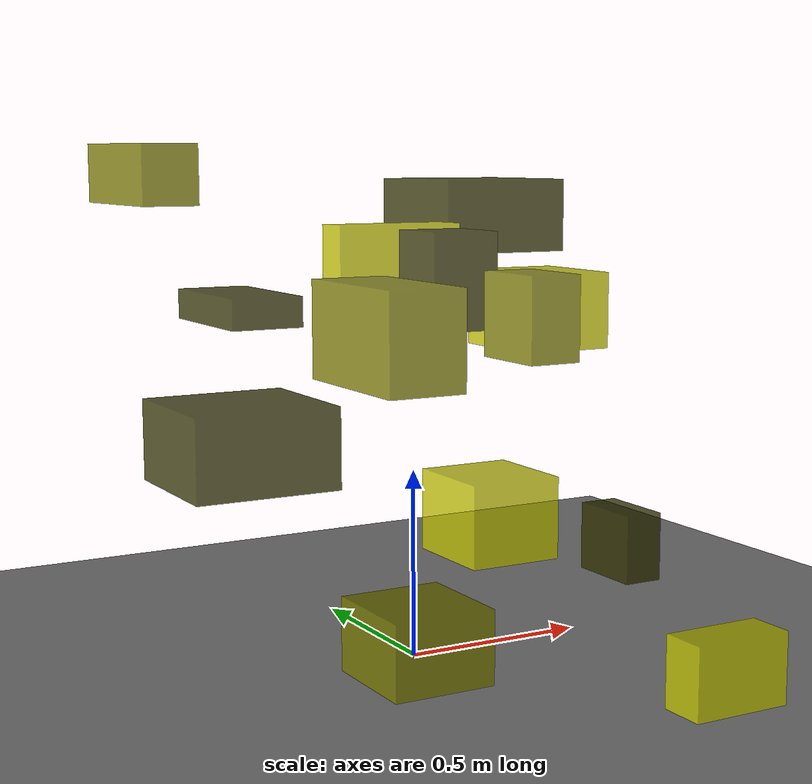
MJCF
<?xml version="1.0"?>
<mujoco model="obstacle_scene">
  <compiler angle="radian" coordinate="local"/>
  <option timestep="0.001" gravity="0 0 -9.81"/>

  <asset>
    <material name="obstacle_mat" rgba="0.8 0.8 0.0 0.8"/>
    <material name="ground_mat" rgba="0.5 0.5 0.5 1"/>
  </asset>

  <worldbody>
    <!-- Ground plane -->
    <geom name="ground" type="plane" size="3 3 0.1" material="ground_mat"/>

    <!-- Obstacles -->
    <body name="obstacle_0" pos="0.503987 0.551207 1.139245">
      <geom name="obs_0" type="box" size="0.195483 0.197513 0.105414" rgba="0.2 0.2 0.0 0.8"/>
    </body>
    <body name="obstacle_1" pos="-0.399500 -0.618353 0.939002">
      <geom name="obs_1" type="box" size="0.089241 0.181045 0.109898" rgba="0.5 0.5 0.0 0.8"/>
    </body>
    <body name="obstacle_2" pos="0.427614 -0.765391 0.108572">
      <geom name="obs_2" type="box" size="0.133034 0.061822 0.091893" rgba="0.8 0.8 0.0 0.8"/>
    </body>
    <body name="obstacle_3" pos="-0.237151 0.587836 0.889863">
      <geom name="obs_3" type="box" size="0.103786 0.202890 0.042881" rgba="0.2 0.2 0.0 0.8"/>
    </body>
    <body name="obstacle_4" pos="-0.777328 -0.180764 1.273989">
      <geom name="obs_4" type="box" size="0.062859 0.181725 0.065958" rgba="0.5 0.5 0.0 0.8"/>
    </body>
    <body name="obstacle_5" pos="0.806032 0.653224 0.833427">
      <geom name="obs_5" type="box" size="0.153946 0.170173 0.119300" rgba="0.8 0.8 0.0 0.8"/>
    </body>
    <body name="obstacle_6" pos="0.899303 0.314759 0.135975">
      <geom name="obs_6" type="box" size="0.060950 0.121121 0.104306" rgba="0.2 0.2 0.0 0.8"/>
    </body>
    <body name="obstacle_7" pos="-0.327881 -0.615968 0.256991">
      <geom name="obs_7" type="box" size="0.121804 0.129145 0.085980" rgba="0.5 0.5 0.0 0.8"/>
    </body>
    <body name="obstacle_8" pos="0.127119 0.353651 1.039477">
      <geom name="obs_8" type="box" size="0.187299 0.055026 0.086115" rgba="0.8 0.8 0.0 0.8"/>
    </body>
    <body name="obstacle_9" pos="-0.405664 0.185925 0.578111">
      <geom name="obs_9" type="box" size="0.195732 0.188963 0.108177" rgba="0.2 0.2 0.0 0.8"/>
    </body>
    <body name="obstacle_10" pos="0.198447 -0.254826 0.917442">
      <geom name="obs_10" type="box" size="0.070238 0.111117 0.109018" rgba="0.5 0.5 0.0 0.8"/>
    </body>
    <body name="obstacle_11" pos="0.593736 0.591524 0.202629">
      <geom name="obs_11" type="box" size="0.150982 0.161797 0.129394" rgba="0.8 0.8 0.0 0.8"/>
    </body>
    <body name="obstacle_12" pos="0.218438 0.222438 0.976955">
      <geom name="obs_12" type="box" size="0.098413 0.122426 0.134474" rgba="0.2 0.2 0.0 0.8"/>
    </body>
  </worldbody>
</mujoco>
